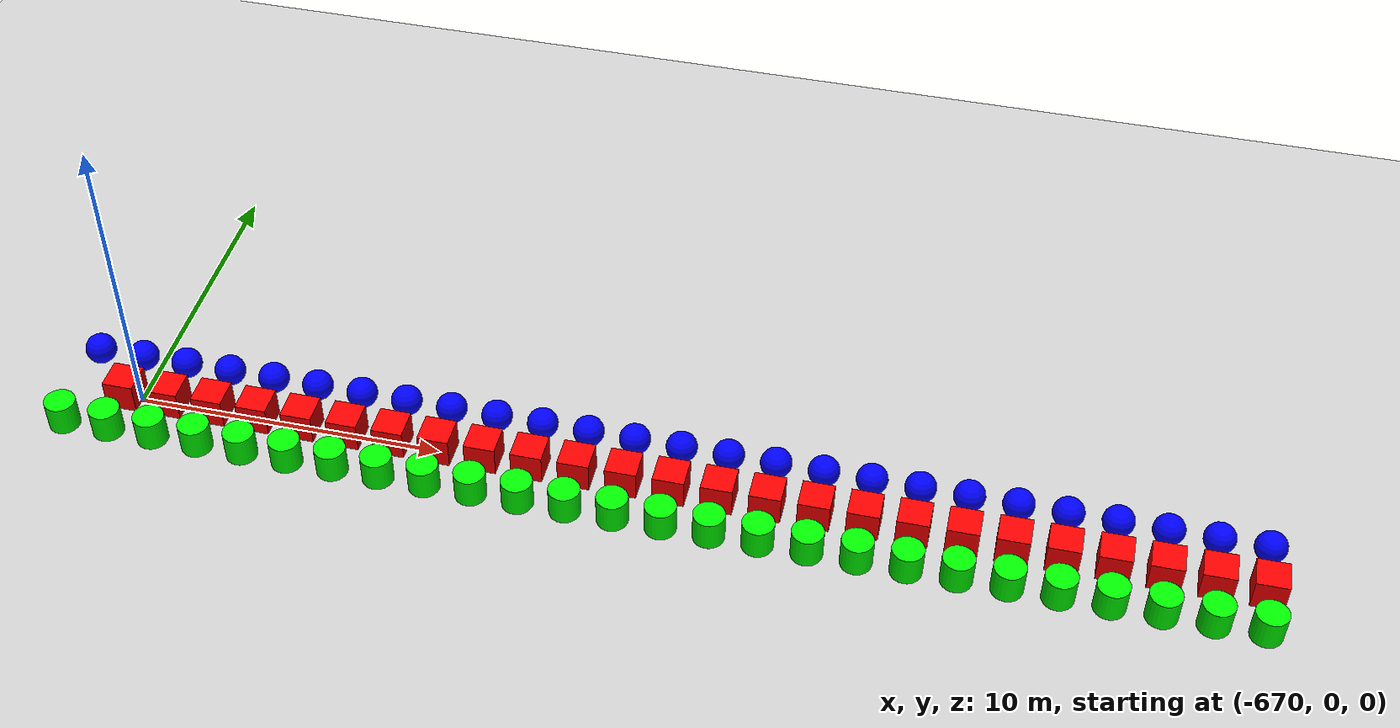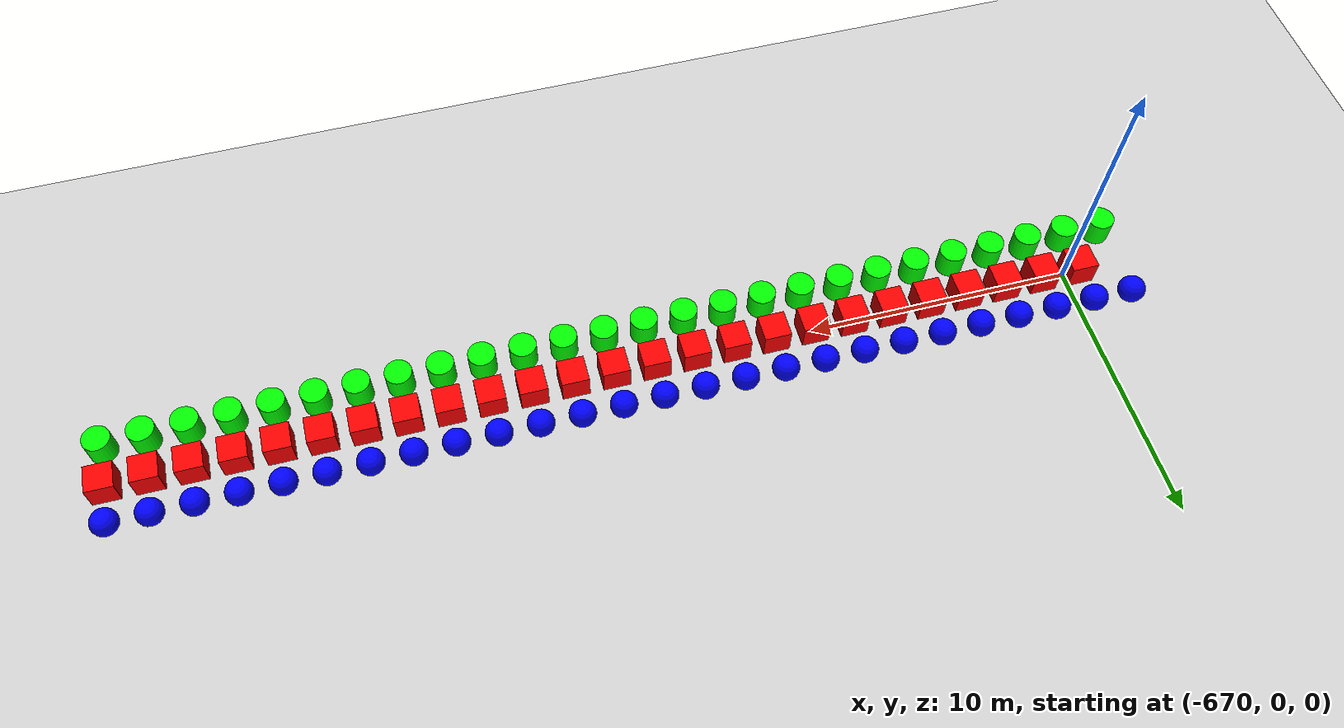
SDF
<sdf version="1.6">
 <world name="shapes">
  <model name="ground_plane">
   <static>true</static>
   <link name="link">
    <collision name="collision">
     <geometry><plane><normal>0 0 1</normal><size>100 100</size></plane></geometry>
    </collision>
    <visual name="visual">
     <geometry><plane><normal>0 0 1</normal><size>100 100</size></plane></geometry>
     <material>
      <ambient>0.8 0.8 0.8 1</ambient>
      <diffuse>0.8 0.8 0.8 1</diffuse>
      <specular>0.8 0.8 0.8 1</specular>
     </material>
    </visual>
   </link>
  </model>
  <model name="cylinder_52">
   <static>false</static>
   <pose>-672.0 -1.5 0.5 0 0 0</pose>
   <link name="cylinder_link">
    <inertial>
     <inertia><ixx>2</ixx><ixy>0</ixy><ixz>0</ixz><iyy>2</iyy><iyz>0</iyz><izz>2</izz></inertia>
     <mass>2.0</mass>
    </inertial>
    <collision name="cylinder_collision">
     <geometry><cylinder><radius>0.5</radius><length>1.0</length></cylinder></geometry>
    </collision>
    <visual name="cylinder_visual">
     <geometry><cylinder><radius>0.5</radius><length>1.0</length></cylinder></geometry>
     <material><ambient>0 1 0 1</ambient><diffuse>0 1 0 1</diffuse><specular>0 1 0 1</specular></material>
    </visual>
   </link>
  </model>
  <model name="sphere_52">
   <static>false</static>
   <pose>-672.0 1.5 0.5 0 0 0</pose>
   <link name="sphere_link">
    <inertial>
     <inertia><ixx>3</ixx><ixy>0</ixy><ixz>0</ixz><iyy>3</iyy><iyz>0</iyz><izz>3</izz></inertia>
     <mass>3.0</mass>
    </inertial>
    <collision name="sphere_collision"><geometry><sphere><radius>0.5</radius></sphere></geometry></collision>
    <visual name="sphere_visual">
     <geometry><sphere><radius>0.5</radius></sphere></geometry>
     <material><ambient>0 0 1 1</ambient><diffuse>0 0 1 1</diffuse><specular>0 0 1 1</specular></material>
    </visual>
   </link>
  </model>
  <model name="box_53">
   <static>false</static>
   <pose>-670.5 0 0.5 0 0 0</pose>
   <link name="box_link">
    <inertial>
     <inertia><ixx>1</ixx><ixy>0</ixy><ixz>0</ixz><iyy>1</iyy><iyz>0</iyz><izz>1</izz></inertia>
     <mass>1.0</mass>
    </inertial>
    <collision name="box_collision"><geometry><box><size>1 1 1</size></box></geometry></collision>
    <visual name="box_visual">
     <geometry><box><size>1 1 1</size></box></geometry>
     <material><ambient>1 0 0 1</ambient><diffuse>1 0 0 1</diffuse><specular>1 0 0 1</specular></material>
    </visual>
   </link>
  </model>
  <model name="cylinder_53">
   <static>false</static>
   <pose>-670.5 -1.5 0.5 0 0 0</pose>
   <link name="cylinder_link">
    <inertial>
     <inertia><ixx>2</ixx><ixy>0</ixy><ixz>0</ixz><iyy>2</iyy><iyz>0</iyz><izz>2</izz></inertia>
     <mass>2.0</mass>
    </inertial>
    <collision name="cylinder_collision">
     <geometry><cylinder><radius>0.5</radius><length>1.0</length></cylinder></geometry>
    </collision>
    <visual name="cylinder_visual">
     <geometry><cylinder><radius>0.5</radius><length>1.0</length></cylinder></geometry>
     <material><ambient>0 1 0 1</ambient><diffuse>0 1 0 1</diffuse><specular>0 1 0 1</specular></material>
    </visual>
   </link>
  </model>
  <model name="sphere_53">
   <static>false</static>
   <pose>-670.5 1.5 0.5 0 0 0</pose>
   <link name="sphere_link">
    <inertial>
     <inertia><ixx>3</ixx><ixy>0</ixy><ixz>0</ixz><iyy>3</iyy><iyz>0</iyz><izz>3</izz></inertia>
     <mass>3.0</mass>
    </inertial>
    <collision name="sphere_collision"><geometry><sphere><radius>0.5</radius></sphere></geometry></collision>
    <visual name="sphere_visual">
     <geometry><sphere><radius>0.5</radius></sphere></geometry>
     <material><ambient>0 0 1 1</ambient><diffuse>0 0 1 1</diffuse><specular>0 0 1 1</specular></material>
    </visual>
   </link>
  </model>
  <model name="box_54">
   <static>false</static>
   <pose>-669.0 0 0.5 0 0 0</pose>
   <link name="box_link">
    <inertial>
     <inertia><ixx>1</ixx><ixy>0</ixy><ixz>0</ixz><iyy>1</iyy><iyz>0</iyz><izz>1</izz></inertia>
     <mass>1.0</mass>
    </inertial>
    <collision name="box_collision"><geometry><box><size>1 1 1</size></box></geometry></collision>
    <visual name="box_visual">
     <geometry><box><size>1 1 1</size></box></geometry>
     <material><ambient>1 0 0 1</ambient><diffuse>1 0 0 1</diffuse><specular>1 0 0 1</specular></material>
    </visual>
   </link>
  </model>
  <model name="cylinder_54">
   <static>false</static>
   <pose>-669.0 -1.5 0.5 0 0 0</pose>
   <link name="cylinder_link">
    <inertial>
     <inertia><ixx>2</ixx><ixy>0</ixy><ixz>0</ixz><iyy>2</iyy><iyz>0</iyz><izz>2</izz></inertia>
     <mass>2.0</mass>
    </inertial>
    <collision name="cylinder_collision">
     <geometry><cylinder><radius>0.5</radius><length>1.0</length></cylinder></geometry>
    </collision>
    <visual name="cylinder_visual">
     <geometry><cylinder><radius>0.5</radius><length>1.0</length></cylinder></geometry>
     <material><ambient>0 1 0 1</ambient><diffuse>0 1 0 1</diffuse><specular>0 1 0 1</specular></material>
    </visual>
   </link>
  </model>
  <model name="sphere_54">
   <static>false</static>
   <pose>-669.0 1.5 0.5 0 0 0</pose>
   <link name="sphere_link">
    <inertial>
     <inertia><ixx>3</ixx><ixy>0</ixy><ixz>0</ixz><iyy>3</iyy><iyz>0</iyz><izz>3</izz></inertia>
     <mass>3.0</mass>
    </inertial>
    <collision name="sphere_collision"><geometry><sphere><radius>0.5</radius></sphere></geometry></collision>
    <visual name="sphere_visual">
     <geometry><sphere><radius>0.5</radius></sphere></geometry>
     <material><ambient>0 0 1 1</ambient><diffuse>0 0 1 1</diffuse><specular>0 0 1 1</specular></material>
    </visual>
   </link>
  </model>
  <model name="box_55">
   <static>false</static>
   <pose>-667.5 0 0.5 0 0 0</pose>
   <link name="box_link">
    <inertial>
     <inertia><ixx>1</ixx><ixy>0</ixy><ixz>0</ixz><iyy>1</iyy><iyz>0</iyz><izz>1</izz></inertia>
     <mass>1.0</mass>
    </inertial>
    <collision name="box_collision"><geometry><box><size>1 1 1</size></box></geometry></collision>
    <visual name="box_visual">
     <geometry><box><size>1 1 1</size></box></geometry>
     <material><ambient>1 0 0 1</ambient><diffuse>1 0 0 1</diffuse><specular>1 0 0 1</specular></material>
    </visual>
   </link>
  </model>
  <model name="cylinder_55">
   <static>false</static>
   <pose>-667.5 -1.5 0.5 0 0 0</pose>
   <link name="cylinder_link">
    <inertial>
     <inertia><ixx>2</ixx><ixy>0</ixy><ixz>0</ixz><iyy>2</iyy><iyz>0</iyz><izz>2</izz></inertia>
     <mass>2.0</mass>
    </inertial>
    <collision name="cylinder_collision">
     <geometry><cylinder><radius>0.5</radius><length>1.0</length></cylinder></geometry>
    </collision>
    <visual name="cylinder_visual">
     <geometry><cylinder><radius>0.5</radius><length>1.0</length></cylinder></geometry>
     <material><ambient>0 1 0 1</ambient><diffuse>0 1 0 1</diffuse><specular>0 1 0 1</specular></material>
    </visual>
   </link>
  </model>
  <model name="sphere_55">
   <static>false</static>
   <pose>-667.5 1.5 0.5 0 0 0</pose>
   <link name="sphere_link">
    <inertial>
     <inertia><ixx>3</ixx><ixy>0</ixy><ixz>0</ixz><iyy>3</iyy><iyz>0</iyz><izz>3</izz></inertia>
     <mass>3.0</mass>
    </inertial>
    <collision name="sphere_collision"><geometry><sphere><radius>0.5</radius></sphere></geometry></collision>
    <visual name="sphere_visual">
     <geometry><sphere><radius>0.5</radius></sphere></geometry>
     <material><ambient>0 0 1 1</ambient><diffuse>0 0 1 1</diffuse><specular>0 0 1 1</specular></material>
    </visual>
   </link>
  </model>
  <model name="box_56">
   <static>false</static>
   <pose>-666.0 0 0.5 0 0 0</pose>
   <link name="box_link">
    <inertial>
     <inertia><ixx>1</ixx><ixy>0</ixy><ixz>0</ixz><iyy>1</iyy><iyz>0</iyz><izz>1</izz></inertia>
     <mass>1.0</mass>
    </inertial>
    <collision name="box_collision"><geometry><box><size>1 1 1</size></box></geometry></collision>
    <visual name="box_visual">
     <geometry><box><size>1 1 1</size></box></geometry>
     <material><ambient>1 0 0 1</ambient><diffuse>1 0 0 1</diffuse><specular>1 0 0 1</specular></material>
    </visual>
   </link>
  </model>
  <model name="cylinder_56">
   <static>false</static>
   <pose>-666.0 -1.5 0.5 0 0 0</pose>
   <link name="cylinder_link">
    <inertial>
     <inertia><ixx>2</ixx><ixy>0</ixy><ixz>0</ixz><iyy>2</iyy><iyz>0</iyz><izz>2</izz></inertia>
     <mass>2.0</mass>
    </inertial>
    <collision name="cylinder_collision">
     <geometry><cylinder><radius>0.5</radius><length>1.0</length></cylinder></geometry>
    </collision>
    <visual name="cylinder_visual">
     <geometry><cylinder><radius>0.5</radius><length>1.0</length></cylinder></geometry>
     <material><ambient>0 1 0 1</ambient><diffuse>0 1 0 1</diffuse><specular>0 1 0 1</specular></material>
    </visual>
   </link>
  </model>
  <model name="sphere_56">
   <static>false</static>
   <pose>-666.0 1.5 0.5 0 0 0</pose>
   <link name="sphere_link">
    <inertial>
     <inertia><ixx>3</ixx><ixy>0</ixy><ixz>0</ixz><iyy>3</iyy><iyz>0</iyz><izz>3</izz></inertia>
     <mass>3.0</mass>
    </inertial>
    <collision name="sphere_collision"><geometry><sphere><radius>0.5</radius></sphere></geometry></collision>
    <visual name="sphere_visual">
     <geometry><sphere><radius>0.5</radius></sphere></geometry>
     <material><ambient>0 0 1 1</ambient><diffuse>0 0 1 1</diffuse><specular>0 0 1 1</specular></material>
    </visual>
   </link>
  </model>
  <model name="box_57">
   <static>false</static>
   <pose>-664.5 0 0.5 0 0 0</pose>
   <link name="box_link">
    <inertial>
     <inertia><ixx>1</ixx><ixy>0</ixy><ixz>0</ixz><iyy>1</iyy><iyz>0</iyz><izz>1</izz></inertia>
     <mass>1.0</mass>
    </inertial>
    <collision name="box_collision"><geometry><box><size>1 1 1</size></box></geometry></collision>
    <visual name="box_visual">
     <geometry><box><size>1 1 1</size></box></geometry>
     <material><ambient>1 0 0 1</ambient><diffuse>1 0 0 1</diffuse><specular>1 0 0 1</specular></material>
    </visual>
   </link>
  </model>
  <model name="cylinder_57">
   <static>false</static>
   <pose>-664.5 -1.5 0.5 0 0 0</pose>
   <link name="cylinder_link">
    <inertial>
     <inertia><ixx>2</ixx><ixy>0</ixy><ixz>0</ixz><iyy>2</iyy><iyz>0</iyz><izz>2</izz></inertia>
     <mass>2.0</mass>
    </inertial>
    <collision name="cylinder_collision">
     <geometry><cylinder><radius>0.5</radius><length>1.0</length></cylinder></geometry>
    </collision>
    <visual name="cylinder_visual">
     <geometry><cylinder><radius>0.5</radius><length>1.0</length></cylinder></geometry>
     <material><ambient>0 1 0 1</ambient><diffuse>0 1 0 1</diffuse><specular>0 1 0 1</specular></material>
    </visual>
   </link>
  </model>
  <model name="sphere_57">
   <static>false</static>
   <pose>-664.5 1.5 0.5 0 0 0</pose>
   <link name="sphere_link">
    <inertial>
     <inertia><ixx>3</ixx><ixy>0</ixy><ixz>0</ixz><iyy>3</iyy><iyz>0</iyz><izz>3</izz></inertia>
     <mass>3.0</mass>
    </inertial>
    <collision name="sphere_collision"><geometry><sphere><radius>0.5</radius></sphere></geometry></collision>
    <visual name="sphere_visual">
     <geometry><sphere><radius>0.5</radius></sphere></geometry>
     <material><ambient>0 0 1 1</ambient><diffuse>0 0 1 1</diffuse><specular>0 0 1 1</specular></material>
    </visual>
   </link>
  </model>
  <model name="box_58">
   <static>false</static>
   <pose>-663.0 0 0.5 0 0 0</pose>
   <link name="box_link">
    <inertial>
     <inertia><ixx>1</ixx><ixy>0</ixy><ixz>0</ixz><iyy>1</iyy><iyz>0</iyz><izz>1</izz></inertia>
     <mass>1.0</mass>
    </inertial>
    <collision name="box_collision"><geometry><box><size>1 1 1</size></box></geometry></collision>
    <visual name="box_visual">
     <geometry><box><size>1 1 1</size></box></geometry>
     <material><ambient>1 0 0 1</ambient><diffuse>1 0 0 1</diffuse><specular>1 0 0 1</specular></material>
    </visual>
   </link>
  </model>
  <model name="cylinder_58">
   <static>false</static>
   <pose>-663.0 -1.5 0.5 0 0 0</pose>
   <link name="cylinder_link">
    <inertial>
     <inertia><ixx>2</ixx><ixy>0</ixy><ixz>0</ixz><iyy>2</iyy><iyz>0</iyz><izz>2</izz></inertia>
     <mass>2.0</mass>
    </inertial>
    <collision name="cylinder_collision">
     <geometry><cylinder><radius>0.5</radius><length>1.0</length></cylinder></geometry>
    </collision>
    <visual name="cylinder_visual">
     <geometry><cylinder><radius>0.5</radius><length>1.0</length></cylinder></geometry>
     <material><ambient>0 1 0 1</ambient><diffuse>0 1 0 1</diffuse><specular>0 1 0 1</specular></material>
    </visual>
   </link>
  </model>
  <model name="sphere_58">
   <static>false</static>
   <pose>-663.0 1.5 0.5 0 0 0</pose>
   <link name="sphere_link">
    <inertial>
     <inertia><ixx>3</ixx><ixy>0</ixy><ixz>0</ixz><iyy>3</iyy><iyz>0</iyz><izz>3</izz></inertia>
     <mass>3.0</mass>
    </inertial>
    <collision name="sphere_collision"><geometry><sphere><radius>0.5</radius></sphere></geometry></collision>
    <visual name="sphere_visual">
     <geometry><sphere><radius>0.5</radius></sphere></geometry>
     <material><ambient>0 0 1 1</ambient><diffuse>0 0 1 1</diffuse><specular>0 0 1 1</specular></material>
    </visual>
   </link>
  </model>
  <model name="box_59">
   <static>false</static>
   <pose>-661.5 0 0.5 0 0 0</pose>
   <link name="box_link">
    <inertial>
     <inertia><ixx>1</ixx><ixy>0</ixy><ixz>0</ixz><iyy>1</iyy><iyz>0</iyz><izz>1</izz></inertia>
     <mass>1.0</mass>
    </inertial>
    <collision name="box_collision"><geometry><box><size>1 1 1</size></box></geometry></collision>
    <visual name="box_visual">
     <geometry><box><size>1 1 1</size></box></geometry>
     <material><ambient>1 0 0 1</ambient><diffuse>1 0 0 1</diffuse><specular>1 0 0 1</specular></material>
    </visual>
   </link>
  </model>
  <model name="cylinder_59">
   <static>false</static>
   <pose>-661.5 -1.5 0.5 0 0 0</pose>
   <link name="cylinder_link">
    <inertial>
     <inertia><ixx>2</ixx><ixy>0</ixy><ixz>0</ixz><iyy>2</iyy><iyz>0</iyz><izz>2</izz></inertia>
     <mass>2.0</mass>
    </inertial>
    <collision name="cylinder_collision">
     <geometry><cylinder><radius>0.5</radius><length>1.0</length></cylinder></geometry>
    </collision>
    <visual name="cylinder_visual">
     <geometry><cylinder><radius>0.5</radius><length>1.0</length></cylinder></geometry>
     <material><ambient>0 1 0 1</ambient><diffuse>0 1 0 1</diffuse><specular>0 1 0 1</specular></material>
    </visual>
   </link>
  </model>
  <model name="sphere_59">
   <static>false</static>
   <pose>-661.5 1.5 0.5 0 0 0</pose>
   <link name="sphere_link">
    <inertial>
     <inertia><ixx>3</ixx><ixy>0</ixy><ixz>0</ixz><iyy>3</iyy><iyz>0</iyz><izz>3</izz></inertia>
     <mass>3.0</mass>
    </inertial>
    <collision name="sphere_collision"><geometry><sphere><radius>0.5</radius></sphere></geometry></collision>
    <visual name="sphere_visual">
     <geometry><sphere><radius>0.5</radius></sphere></geometry>
     <material><ambient>0 0 1 1</ambient><diffuse>0 0 1 1</diffuse><specular>0 0 1 1</specular></material>
    </visual>
   </link>
  </model>
  <model name="box_60">
   <static>false</static>
   <pose>-660.0 0 0.5 0 0 0</pose>
   <link name="box_link">
    <inertial>
     <inertia><ixx>1</ixx><ixy>0</ixy><ixz>0</ixz><iyy>1</iyy><iyz>0</iyz><izz>1</izz></inertia>
     <mass>1.0</mass>
    </inertial>
    <collision name="box_collision"><geometry><box><size>1 1 1</size></box></geometry></collision>
    <visual name="box_visual">
     <geometry><box><size>1 1 1</size></box></geometry>
     <material><ambient>1 0 0 1</ambient><diffuse>1 0 0 1</diffuse><specular>1 0 0 1</specular></material>
    </visual>
   </link>
  </model>
  <model name="cylinder_60">
   <static>false</static>
   <pose>-660.0 -1.5 0.5 0 0 0</pose>
   <link name="cylinder_link">
    <inertial>
     <inertia><ixx>2</ixx><ixy>0</ixy><ixz>0</ixz><iyy>2</iyy><iyz>0</iyz><izz>2</izz></inertia>
     <mass>2.0</mass>
    </inertial>
    <collision name="cylinder_collision">
     <geometry><cylinder><radius>0.5</radius><length>1.0</length></cylinder></geometry>
    </collision>
    <visual name="cylinder_visual">
     <geometry><cylinder><radius>0.5</radius><length>1.0</length></cylinder></geometry>
     <material><ambient>0 1 0 1</ambient><diffuse>0 1 0 1</diffuse><specular>0 1 0 1</specular></material>
    </visual>
   </link>
  </model>
  <model name="sphere_60">
   <static>false</static>
   <pose>-660.0 1.5 0.5 0 0 0</pose>
   <link name="sphere_link">
    <inertial>
     <inertia><ixx>3</ixx><ixy>0</ixy><ixz>0</ixz><iyy>3</iyy><iyz>0</iyz><izz>3</izz></inertia>
     <mass>3.0</mass>
    </inertial>
    <collision name="sphere_collision"><geometry><sphere><radius>0.5</radius></sphere></geometry></collision>
    <visual name="sphere_visual">
     <geometry><sphere><radius>0.5</radius></sphere></geometry>
     <material><ambient>0 0 1 1</ambient><diffuse>0 0 1 1</diffuse><specular>0 0 1 1</specular></material>
    </visual>
   </link>
  </model>
  <model name="box_61">
   <static>false</static>
   <pose>-658.5 0 0.5 0 0 0</pose>
   <link name="box_link">
    <inertial>
     <inertia><ixx>1</ixx><ixy>0</ixy><ixz>0</ixz><iyy>1</iyy><iyz>0</iyz><izz>1</izz></inertia>
     <mass>1.0</mass>
    </inertial>
    <collision name="box_collision"><geometry><box><size>1 1 1</size></box></geometry></collision>
    <visual name="box_visual">
     <geometry><box><size>1 1 1</size></box></geometry>
     <material><ambient>1 0 0 1</ambient><diffuse>1 0 0 1</diffuse><specular>1 0 0 1</specular></material>
    </visual>
   </link>
  </model>
  <model name="cylinder_61">
   <static>false</static>
   <pose>-658.5 -1.5 0.5 0 0 0</pose>
   <link name="cylinder_link">
    <inertial>
     <inertia><ixx>2</ixx><ixy>0</ixy><ixz>0</ixz><iyy>2</iyy><iyz>0</iyz><izz>2</izz></inertia>
     <mass>2.0</mass>
    </inertial>
    <collision name="cylinder_collision">
     <geometry><cylinder><radius>0.5</radius><length>1.0</length></cylinder></geometry>
    </collision>
    <visual name="cylinder_visual">
     <geometry><cylinder><radius>0.5</radius><length>1.0</length></cylinder></geometry>
     <material><ambient>0 1 0 1</ambient><diffuse>0 1 0 1</diffuse><specular>0 1 0 1</specular></material>
    </visual>
   </link>
  </model>
  <model name="sphere_61">
   <static>false</static>
   <pose>-658.5 1.5 0.5 0 0 0</pose>
   <link name="sphere_link">
    <inertial>
     <inertia><ixx>3</ixx><ixy>0</ixy><ixz>0</ixz><iyy>3</iyy><iyz>0</iyz><izz>3</izz></inertia>
     <mass>3.0</mass>
    </inertial>
    <collision name="sphere_collision"><geometry><sphere><radius>0.5</radius></sphere></geometry></collision>
    <visual name="sphere_visual">
     <geometry><sphere><radius>0.5</radius></sphere></geometry>
     <material><ambient>0 0 1 1</ambient><diffuse>0 0 1 1</diffuse><specular>0 0 1 1</specular></material>
    </visual>
   </link>
  </model>
  <model name="box_62">
   <static>false</static>
   <pose>-657.0 0 0.5 0 0 0</pose>
   <link name="box_link">
    <inertial>
     <inertia><ixx>1</ixx><ixy>0</ixy><ixz>0</ixz><iyy>1</iyy><iyz>0</iyz><izz>1</izz></inertia>
     <mass>1.0</mass>
    </inertial>
    <collision name="box_collision"><geometry><box><size>1 1 1</size></box></geometry></collision>
    <visual name="box_visual">
     <geometry><box><size>1 1 1</size></box></geometry>
     <material><ambient>1 0 0 1</ambient><diffuse>1 0 0 1</diffuse><specular>1 0 0 1</specular></material>
    </visual>
   </link>
  </model>
  <model name="cylinder_62">
   <static>false</static>
   <pose>-657.0 -1.5 0.5 0 0 0</pose>
   <link name="cylinder_link">
    <inertial>
     <inertia><ixx>2</ixx><ixy>0</ixy><ixz>0</ixz><iyy>2</iyy><iyz>0</iyz><izz>2</izz></inertia>
     <mass>2.0</mass>
    </inertial>
    <collision name="cylinder_collision">
     <geometry><cylinder><radius>0.5</radius><length>1.0</length></cylinder></geometry>
    </collision>
    <visual name="cylinder_visual">
     <geometry><cylinder><radius>0.5</radius><length>1.0</length></cylinder></geometry>
     <material><ambient>0 1 0 1</ambient><diffuse>0 1 0 1</diffuse><specular>0 1 0 1</specular></material>
    </visual>
   </link>
  </model>
  <model name="sphere_62">
   <static>false</static>
   <pose>-657.0 1.5 0.5 0 0 0</pose>
   <link name="sphere_link">
    <inertial>
     <inertia><ixx>3</ixx><ixy>0</ixy><ixz>0</ixz><iyy>3</iyy><iyz>0</iyz><izz>3</izz></inertia>
     <mass>3.0</mass>
    </inertial>
    <collision name="sphere_collision"><geometry><sphere><radius>0.5</radius></sphere></geometry></collision>
    <visual name="sphere_visual">
     <geometry><sphere><radius>0.5</radius></sphere></geometry>
     <material><ambient>0 0 1 1</ambient><diffuse>0 0 1 1</diffuse><specular>0 0 1 1</specular></material>
    </visual>
   </link>
  </model>
  <model name="box_63">
   <static>false</static>
   <pose>-655.5 0 0.5 0 0 0</pose>
   <link name="box_link">
    <inertial>
     <inertia><ixx>1</ixx><ixy>0</ixy><ixz>0</ixz><iyy>1</iyy><iyz>0</iyz><izz>1</izz></inertia>
     <mass>1.0</mass>
    </inertial>
    <collision name="box_collision"><geometry><box><size>1 1 1</size></box></geometry></collision>
    <visual name="box_visual">
     <geometry><box><size>1 1 1</size></box></geometry>
     <material><ambient>1 0 0 1</ambient><diffuse>1 0 0 1</diffuse><specular>1 0 0 1</specular></material>
    </visual>
   </link>
  </model>
  <model name="cylinder_63">
   <static>false</static>
   <pose>-655.5 -1.5 0.5 0 0 0</pose>
   <link name="cylinder_link">
    <inertial>
     <inertia><ixx>2</ixx><ixy>0</ixy><ixz>0</ixz><iyy>2</iyy><iyz>0</iyz><izz>2</izz></inertia>
     <mass>2.0</mass>
    </inertial>
    <collision name="cylinder_collision">
     <geometry><cylinder><radius>0.5</radius><length>1.0</length></cylinder></geometry>
    </collision>
    <visual name="cylinder_visual">
     <geometry><cylinder><radius>0.5</radius><length>1.0</length></cylinder></geometry>
     <material><ambient>0 1 0 1</ambient><diffuse>0 1 0 1</diffuse><specular>0 1 0 1</specular></material>
    </visual>
   </link>
  </model>
  <model name="sphere_63">
   <static>false</static>
   <pose>-655.5 1.5 0.5 0 0 0</pose>
   <link name="sphere_link">
    <inertial>
     <inertia><ixx>3</ixx><ixy>0</ixy><ixz>0</ixz><iyy>3</iyy><iyz>0</iyz><izz>3</izz></inertia>
     <mass>3.0</mass>
    </inertial>
    <collision name="sphere_collision"><geometry><sphere><radius>0.5</radius></sphere></geometry></collision>
    <visual name="sphere_visual">
     <geometry><sphere><radius>0.5</radius></sphere></geometry>
     <material><ambient>0 0 1 1</ambient><diffuse>0 0 1 1</diffuse><specular>0 0 1 1</specular></material>
    </visual>
   </link>
  </model>
  <model name="box_64">
   <static>false</static>
   <pose>-654.0 0 0.5 0 0 0</pose>
   <link name="box_link">
    <inertial>
     <inertia><ixx>1</ixx><ixy>0</ixy><ixz>0</ixz><iyy>1</iyy><iyz>0</iyz><izz>1</izz></inertia>
     <mass>1.0</mass>
    </inertial>
    <collision name="box_collision"><geometry><box><size>1 1 1</size></box></geometry></collision>
    <visual name="box_visual">
     <geometry><box><size>1 1 1</size></box></geometry>
     <material><ambient>1 0 0 1</ambient><diffuse>1 0 0 1</diffuse><specular>1 0 0 1</specular></material>
    </visual>
   </link>
  </model>
  <model name="cylinder_64">
   <static>false</static>
   <pose>-654.0 -1.5 0.5 0 0 0</pose>
   <link name="cylinder_link">
    <inertial>
     <inertia><ixx>2</ixx><ixy>0</ixy><ixz>0</ixz><iyy>2</iyy><iyz>0</iyz><izz>2</izz></inertia>
     <mass>2.0</mass>
    </inertial>
    <collision name="cylinder_collision">
     <geometry><cylinder><radius>0.5</radius><length>1.0</length></cylinder></geometry>
    </collision>
    <visual name="cylinder_visual">
     <geometry><cylinder><radius>0.5</radius><length>1.0</length></cylinder></geometry>
     <material><ambient>0 1 0 1</ambient><diffuse>0 1 0 1</diffuse><specular>0 1 0 1</specular></material>
    </visual>
   </link>
  </model>
  <model name="sphere_64">
   <static>false</static>
   <pose>-654.0 1.5 0.5 0 0 0</pose>
   <link name="sphere_link">
    <inertial>
     <inertia><ixx>3</ixx><ixy>0</ixy><ixz>0</ixz><iyy>3</iyy><iyz>0</iyz><izz>3</izz></inertia>
     <mass>3.0</mass>
    </inertial>
    <collision name="sphere_collision"><geometry><sphere><radius>0.5</radius></sphere></geometry></collision>
    <visual name="sphere_visual">
     <geometry><sphere><radius>0.5</radius></sphere></geometry>
     <material><ambient>0 0 1 1</ambient><diffuse>0 0 1 1</diffuse><specular>0 0 1 1</specular></material>
    </visual>
   </link>
  </model>
  <model name="box_65">
   <static>false</static>
   <pose>-652.5 0 0.5 0 0 0</pose>
   <link name="box_link">
    <inertial>
     <inertia><ixx>1</ixx><ixy>0</ixy><ixz>0</ixz><iyy>1</iyy><iyz>0</iyz><izz>1</izz></inertia>
     <mass>1.0</mass>
    </inertial>
    <collision name="box_collision"><geometry><box><size>1 1 1</size></box></geometry></collision>
    <visual name="box_visual">
     <geometry><box><size>1 1 1</size></box></geometry>
     <material><ambient>1 0 0 1</ambient><diffuse>1 0 0 1</diffuse><specular>1 0 0 1</specular></material>
    </visual>
   </link>
  </model>
  <model name="cylinder_65">
   <static>false</static>
   <pose>-652.5 -1.5 0.5 0 0 0</pose>
   <link name="cylinder_link">
    <inertial>
     <inertia><ixx>2</ixx><ixy>0</ixy><ixz>0</ixz><iyy>2</iyy><iyz>0</iyz><izz>2</izz></inertia>
     <mass>2.0</mass>
    </inertial>
    <collision name="cylinder_collision">
     <geometry><cylinder><radius>0.5</radius><length>1.0</length></cylinder></geometry>
    </collision>
    <visual name="cylinder_visual">
     <geometry><cylinder><radius>0.5</radius><length>1.0</length></cylinder></geometry>
     <material><ambient>0 1 0 1</ambient><diffuse>0 1 0 1</diffuse><specular>0 1 0 1</specular></material>
    </visual>
   </link>
  </model>
  <model name="sphere_65">
   <static>false</static>
   <pose>-652.5 1.5 0.5 0 0 0</pose>
   <link name="sphere_link">
    <inertial>
     <inertia><ixx>3</ixx><ixy>0</ixy><ixz>0</ixz><iyy>3</iyy><iyz>0</iyz><izz>3</izz></inertia>
     <mass>3.0</mass>
    </inertial>
    <collision name="sphere_collision"><geometry><sphere><radius>0.5</radius></sphere></geometry></collision>
    <visual name="sphere_visual">
     <geometry><sphere><radius>0.5</radius></sphere></geometry>
     <material><ambient>0 0 1 1</ambient><diffuse>0 0 1 1</diffuse><specular>0 0 1 1</specular></material>
    </visual>
   </link>
  </model>
  <model name="box_66">
   <static>false</static>
   <pose>-651.0 0 0.5 0 0 0</pose>
   <link name="box_link">
    <inertial>
     <inertia><ixx>1</ixx><ixy>0</ixy><ixz>0</ixz><iyy>1</iyy><iyz>0</iyz><izz>1</izz></inertia>
     <mass>1.0</mass>
    </inertial>
    <collision name="box_collision"><geometry><box><size>1 1 1</size></box></geometry></collision>
    <visual name="box_visual">
     <geometry><box><size>1 1 1</size></box></geometry>
     <material><ambient>1 0 0 1</ambient><diffuse>1 0 0 1</diffuse><specular>1 0 0 1</specular></material>
    </visual>
   </link>
  </model>
  <model name="cylinder_66">
   <static>false</static>
   <pose>-651.0 -1.5 0.5 0 0 0</pose>
   <link name="cylinder_link">
    <inertial>
     <inertia><ixx>2</ixx><ixy>0</ixy><ixz>0</ixz><iyy>2</iyy><iyz>0</iyz><izz>2</izz></inertia>
     <mass>2.0</mass>
    </inertial>
    <collision name="cylinder_collision">
     <geometry><cylinder><radius>0.5</radius><length>1.0</length></cylinder></geometry>
    </collision>
    <visual name="cylinder_visual">
     <geometry><cylinder><radius>0.5</radius><length>1.0</length></cylinder></geometry>
     <material><ambient>0 1 0 1</ambient><diffuse>0 1 0 1</diffuse><specular>0 1 0 1</specular></material>
    </visual>
   </link>
  </model>
  <model name="sphere_66">
   <static>false</static>
   <pose>-651.0 1.5 0.5 0 0 0</pose>
   <link name="sphere_link">
    <inertial>
     <inertia><ixx>3</ixx><ixy>0</ixy><ixz>0</ixz><iyy>3</iyy><iyz>0</iyz><izz>3</izz></inertia>
     <mass>3.0</mass>
    </inertial>
    <collision name="sphere_collision"><geometry><sphere><radius>0.5</radius></sphere></geometry></collision>
    <visual name="sphere_visual">
     <geometry><sphere><radius>0.5</radius></sphere></geometry>
     <material><ambient>0 0 1 1</ambient><diffuse>0 0 1 1</diffuse><specular>0 0 1 1</specular></material>
    </visual>
   </link>
  </model>
  <model name="box_67">
   <static>false</static>
   <pose>-649.5 0 0.5 0 0 0</pose>
   <link name="box_link">
    <inertial>
     <inertia><ixx>1</ixx><ixy>0</ixy><ixz>0</ixz><iyy>1</iyy><iyz>0</iyz><izz>1</izz></inertia>
     <mass>1.0</mass>
    </inertial>
    <collision name="box_collision"><geometry><box><size>1 1 1</size></box></geometry></collision>
    <visual name="box_visual">
     <geometry><box><size>1 1 1</size></box></geometry>
     <material><ambient>1 0 0 1</ambient><diffuse>1 0 0 1</diffuse><specular>1 0 0 1</specular></material>
    </visual>
   </link>
  </model>
  <model name="cylinder_67">
   <static>false</static>
   <pose>-649.5 -1.5 0.5 0 0 0</pose>
   <link name="cylinder_link">
    <inertial>
     <inertia><ixx>2</ixx><ixy>0</ixy><ixz>0</ixz><iyy>2</iyy><iyz>0</iyz><izz>2</izz></inertia>
     <mass>2.0</mass>
    </inertial>
    <collision name="cylinder_collision">
     <geometry><cylinder><radius>0.5</radius><length>1.0</length></cylinder></geometry>
    </collision>
    <visual name="cylinder_visual">
     <geometry><cylinder><radius>0.5</radius><length>1.0</length></cylinder></geometry>
     <material><ambient>0 1 0 1</ambient><diffuse>0 1 0 1</diffuse><specular>0 1 0 1</specular></material>
    </visual>
   </link>
  </model>
  <model name="sphere_67">
   <static>false</static>
   <pose>-649.5 1.5 0.5 0 0 0</pose>
   <link name="sphere_link">
    <inertial>
     <inertia><ixx>3</ixx><ixy>0</ixy><ixz>0</ixz><iyy>3</iyy><iyz>0</iyz><izz>3</izz></inertia>
     <mass>3.0</mass>
    </inertial>
    <collision name="sphere_collision"><geometry><sphere><radius>0.5</radius></sphere></geometry></collision>
    <visual name="sphere_visual">
     <geometry><sphere><radius>0.5</radius></sphere></geometry>
     <material><ambient>0 0 1 1</ambient><diffuse>0 0 1 1</diffuse><specular>0 0 1 1</specular></material>
    </visual>
   </link>
  </model>
  <model name="box_68">
   <static>false</static>
   <pose>-648.0 0 0.5 0 0 0</pose>
   <link name="box_link">
    <inertial>
     <inertia><ixx>1</ixx><ixy>0</ixy><ixz>0</ixz><iyy>1</iyy><iyz>0</iyz><izz>1</izz></inertia>
     <mass>1.0</mass>
    </inertial>
    <collision name="box_collision"><geometry><box><size>1 1 1</size></box></geometry></collision>
    <visual name="box_visual">
     <geometry><box><size>1 1 1</size></box></geometry>
     <material><ambient>1 0 0 1</ambient><diffuse>1 0 0 1</diffuse><specular>1 0 0 1</specular></material>
    </visual>
   </link>
  </model>
  <model name="cylinder_68">
   <static>false</static>
   <pose>-648.0 -1.5 0.5 0 0 0</pose>
   <link name="cylinder_link">
    <inertial>
     <inertia><ixx>2</ixx><ixy>0</ixy><ixz>0</ixz><iyy>2</iyy><iyz>0</iyz><izz>2</izz></inertia>
     <mass>2.0</mass>
    </inertial>
    <collision name="cylinder_collision">
     <geometry><cylinder><radius>0.5</radius><length>1.0</length></cylinder></geometry>
    </collision>
    <visual name="cylinder_visual">
     <geometry><cylinder><radius>0.5</radius><length>1.0</length></cylinder></geometry>
     <material><ambient>0 1 0 1</ambient><diffuse>0 1 0 1</diffuse><specular>0 1 0 1</specular></material>
    </visual>
   </link>
  </model>
  <model name="sphere_68">
   <static>false</static>
   <pose>-648.0 1.5 0.5 0 0 0</pose>
   <link name="sphere_link">
    <inertial>
     <inertia><ixx>3</ixx><ixy>0</ixy><ixz>0</ixz><iyy>3</iyy><iyz>0</iyz><izz>3</izz></inertia>
     <mass>3.0</mass>
    </inertial>
    <collision name="sphere_collision"><geometry><sphere><radius>0.5</radius></sphere></geometry></collision>
    <visual name="sphere_visual">
     <geometry><sphere><radius>0.5</radius></sphere></geometry>
     <material><ambient>0 0 1 1</ambient><diffuse>0 0 1 1</diffuse><specular>0 0 1 1</specular></material>
    </visual>
   </link>
  </model>
  <model name="box_69">
   <static>false</static>
   <pose>-646.5 0 0.5 0 0 0</pose>
   <link name="box_link">
    <inertial>
     <inertia><ixx>1</ixx><ixy>0</ixy><ixz>0</ixz><iyy>1</iyy><iyz>0</iyz><izz>1</izz></inertia>
     <mass>1.0</mass>
    </inertial>
    <collision name="box_collision"><geometry><box><size>1 1 1</size></box></geometry></collision>
    <visual name="box_visual">
     <geometry><box><size>1 1 1</size></box></geometry>
     <material><ambient>1 0 0 1</ambient><diffuse>1 0 0 1</diffuse><specular>1 0 0 1</specular></material>
    </visual>
   </link>
  </model>
  <model name="cylinder_69">
   <static>false</static>
   <pose>-646.5 -1.5 0.5 0 0 0</pose>
   <link name="cylinder_link">
    <inertial>
     <inertia><ixx>2</ixx><ixy>0</ixy><ixz>0</ixz><iyy>2</iyy><iyz>0</iyz><izz>2</izz></inertia>
     <mass>2.0</mass>
    </inertial>
    <collision name="cylinder_collision">
     <geometry><cylinder><radius>0.5</radius><length>1.0</length></cylinder></geometry>
    </collision>
    <visual name="cylinder_visual">
     <geometry><cylinder><radius>0.5</radius><length>1.0</length></cylinder></geometry>
     <material><ambient>0 1 0 1</ambient><diffuse>0 1 0 1</diffuse><specular>0 1 0 1</specular></material>
    </visual>
   </link>
  </model>
  <model name="sphere_69">
   <static>false</static>
   <pose>-646.5 1.5 0.5 0 0 0</pose>
   <link name="sphere_link">
    <inertial>
     <inertia><ixx>3</ixx><ixy>0</ixy><ixz>0</ixz><iyy>3</iyy><iyz>0</iyz><izz>3</izz></inertia>
     <mass>3.0</mass>
    </inertial>
    <collision name="sphere_collision"><geometry><sphere><radius>0.5</radius></sphere></geometry></collision>
    <visual name="sphere_visual">
     <geometry><sphere><radius>0.5</radius></sphere></geometry>
     <material><ambient>0 0 1 1</ambient><diffuse>0 0 1 1</diffuse><specular>0 0 1 1</specular></material>
    </visual>
   </link>
  </model>
  <model name="box_70">
   <static>false</static>
   <pose>-645.0 0 0.5 0 0 0</pose>
   <link name="box_link">
    <inertial>
     <inertia><ixx>1</ixx><ixy>0</ixy><ixz>0</ixz><iyy>1</iyy><iyz>0</iyz><izz>1</izz></inertia>
     <mass>1.0</mass>
    </inertial>
    <collision name="box_collision"><geometry><box><size>1 1 1</size></box></geometry></collision>
    <visual name="box_visual">
     <geometry><box><size>1 1 1</size></box></geometry>
     <material><ambient>1 0 0 1</ambient><diffuse>1 0 0 1</diffuse><specular>1 0 0 1</specular></material>
    </visual>
   </link>
  </model>
  <model name="cylinder_70">
   <static>false</static>
   <pose>-645.0 -1.5 0.5 0 0 0</pose>
   <link name="cylinder_link">
    <inertial>
     <inertia><ixx>2</ixx><ixy>0</ixy><ixz>0</ixz><iyy>2</iyy><iyz>0</iyz><izz>2</izz></inertia>
     <mass>2.0</mass>
    </inertial>
    <collision name="cylinder_collision">
     <geometry><cylinder><radius>0.5</radius><length>1.0</length></cylinder></geometry>
    </collision>
    <visual name="cylinder_visual">
     <geometry><cylinder><radius>0.5</radius><length>1.0</length></cylinder></geometry>
     <material><ambient>0 1 0 1</ambient><diffuse>0 1 0 1</diffuse><specular>0 1 0 1</specular></material>
    </visual>
   </link>
  </model>
  <model name="sphere_70">
   <static>false</static>
   <pose>-645.0 1.5 0.5 0 0 0</pose>
   <link name="sphere_link">
    <inertial>
     <inertia><ixx>3</ixx><ixy>0</ixy><ixz>0</ixz><iyy>3</iyy><iyz>0</iyz><izz>3</izz></inertia>
     <mass>3.0</mass>
    </inertial>
    <collision name="sphere_collision"><geometry><sphere><radius>0.5</radius></sphere></geometry></collision>
    <visual name="sphere_visual">
     <geometry><sphere><radius>0.5</radius></sphere></geometry>
     <material><ambient>0 0 1 1</ambient><diffuse>0 0 1 1</diffuse><specular>0 0 1 1</specular></material>
    </visual>
   </link>
  </model>
  <model name="box_71">
   <static>false</static>
   <pose>-643.5 0 0.5 0 0 0</pose>
   <link name="box_link">
    <inertial>
     <inertia><ixx>1</ixx><ixy>0</ixy><ixz>0</ixz><iyy>1</iyy><iyz>0</iyz><izz>1</izz></inertia>
     <mass>1.0</mass>
    </inertial>
    <collision name="box_collision"><geometry><box><size>1 1 1</size></box></geometry></collision>
    <visual name="box_visual">
     <geometry><box><size>1 1 1</size></box></geometry>
     <material><ambient>1 0 0 1</ambient><diffuse>1 0 0 1</diffuse><specular>1 0 0 1</specular></material>
    </visual>
   </link>
  </model>
  <model name="cylinder_71">
   <static>false</static>
   <pose>-643.5 -1.5 0.5 0 0 0</pose>
   <link name="cylinder_link">
    <inertial>
     <inertia><ixx>2</ixx><ixy>0</ixy><ixz>0</ixz><iyy>2</iyy><iyz>0</iyz><izz>2</izz></inertia>
     <mass>2.0</mass>
    </inertial>
    <collision name="cylinder_collision">
     <geometry><cylinder><radius>0.5</radius><length>1.0</length></cylinder></geometry>
    </collision>
    <visual name="cylinder_visual">
     <geometry><cylinder><radius>0.5</radius><length>1.0</length></cylinder></geometry>
     <material><ambient>0 1 0 1</ambient><diffuse>0 1 0 1</diffuse><specular>0 1 0 1</specular></material>
    </visual>
   </link>
  </model>
  <model name="sphere_71">
   <static>false</static>
   <pose>-643.5 1.5 0.5 0 0 0</pose>
   <link name="sphere_link">
    <inertial>
     <inertia><ixx>3</ixx><ixy>0</ixy><ixz>0</ixz><iyy>3</iyy><iyz>0</iyz><izz>3</izz></inertia>
     <mass>3.0</mass>
    </inertial>
    <collision name="sphere_collision"><geometry><sphere><radius>0.5</radius></sphere></geometry></collision>
    <visual name="sphere_visual">
     <geometry><sphere><radius>0.5</radius></sphere></geometry>
     <material><ambient>0 0 1 1</ambient><diffuse>0 0 1 1</diffuse><specular>0 0 1 1</specular></material>
    </visual>
   </link>
  </model>
  <model name="box_72">
   <static>false</static>
   <pose>-642.0 0 0.5 0 0 0</pose>
   <link name="box_link">
    <inertial>
     <inertia><ixx>1</ixx><ixy>0</ixy><ixz>0</ixz><iyy>1</iyy><iyz>0</iyz><izz>1</izz></inertia>
     <mass>1.0</mass>
    </inertial>
    <collision name="box_collision"><geometry><box><size>1 1 1</size></box></geometry></collision>
    <visual name="box_visual">
     <geometry><box><size>1 1 1</size></box></geometry>
     <material><ambient>1 0 0 1</ambient><diffuse>1 0 0 1</diffuse><specular>1 0 0 1</specular></material>
    </visual>
   </link>
  </model>
  <model name="cylinder_72">
   <static>false</static>
   <pose>-642.0 -1.5 0.5 0 0 0</pose>
   <link name="cylinder_link">
    <inertial>
     <inertia><ixx>2</ixx><ixy>0</ixy><ixz>0</ixz><iyy>2</iyy><iyz>0</iyz><izz>2</izz></inertia>
     <mass>2.0</mass>
    </inertial>
    <collision name="cylinder_collision">
     <geometry><cylinder><radius>0.5</radius><length>1.0</length></cylinder></geometry>
    </collision>
    <visual name="cylinder_visual">
     <geometry><cylinder><radius>0.5</radius><length>1.0</length></cylinder></geometry>
     <material><ambient>0 1 0 1</ambient><diffuse>0 1 0 1</diffuse><specular>0 1 0 1</specular></material>
    </visual>
   </link>
  </model>
  <model name="sphere_72">
   <static>false</static>
   <pose>-642.0 1.5 0.5 0 0 0</pose>
   <link name="sphere_link">
    <inertial>
     <inertia><ixx>3</ixx><ixy>0</ixy><ixz>0</ixz><iyy>3</iyy><iyz>0</iyz><izz>3</izz></inertia>
     <mass>3.0</mass>
    </inertial>
    <collision name="sphere_collision"><geometry><sphere><radius>0.5</radius></sphere></geometry></collision>
    <visual name="sphere_visual">
     <geometry><sphere><radius>0.5</radius></sphere></geometry>
     <material><ambient>0 0 1 1</ambient><diffuse>0 0 1 1</diffuse><specular>0 0 1 1</specular></material>
    </visual>
   </link>
  </model>
  <model name="box_73">
   <static>false</static>
   <pose>-640.5 0 0.5 0 0 0</pose>
   <link name="box_link">
    <inertial>
     <inertia><ixx>1</ixx><ixy>0</ixy><ixz>0</ixz><iyy>1</iyy><iyz>0</iyz><izz>1</izz></inertia>
     <mass>1.0</mass>
    </inertial>
    <collision name="box_collision"><geometry><box><size>1 1 1</size></box></geometry></collision>
    <visual name="box_visual">
     <geometry><box><size>1 1 1</size></box></geometry>
     <material><ambient>1 0 0 1</ambient><diffuse>1 0 0 1</diffuse><specular>1 0 0 1</specular></material>
    </visual>
   </link>
  </model>
  <model name="cylinder_73">
   <static>false</static>
   <pose>-640.5 -1.5 0.5 0 0 0</pose>
   <link name="cylinder_link">
    <inertial>
     <inertia><ixx>2</ixx><ixy>0</ixy><ixz>0</ixz><iyy>2</iyy><iyz>0</iyz><izz>2</izz></inertia>
     <mass>2.0</mass>
    </inertial>
    <collision name="cylinder_collision">
     <geometry><cylinder><radius>0.5</radius><length>1.0</length></cylinder></geometry>
    </collision>
    <visual name="cylinder_visual">
     <geometry><cylinder><radius>0.5</radius><length>1.0</length></cylinder></geometry>
     <material><ambient>0 1 0 1</ambient><diffuse>0 1 0 1</diffuse><specular>0 1 0 1</specular></material>
    </visual>
   </link>
  </model>
  <model name="sphere_73">
   <static>false</static>
   <pose>-640.5 1.5 0.5 0 0 0</pose>
   <link name="sphere_link">
    <inertial>
     <inertia><ixx>3</ixx><ixy>0</ixy><ixz>0</ixz><iyy>3</iyy><iyz>0</iyz><izz>3</izz></inertia>
     <mass>3.0</mass>
    </inertial>
    <collision name="sphere_collision"><geometry><sphere><radius>0.5</radius></sphere></geometry></collision>
    <visual name="sphere_visual">
     <geometry><sphere><radius>0.5</radius></sphere></geometry>
     <material><ambient>0 0 1 1</ambient><diffuse>0 0 1 1</diffuse><specular>0 0 1 1</specular></material>
    </visual>
   </link>
  </model>
  <model name="box_74">
   <static>false</static>
   <pose>-639.0 0 0.5 0 0 0</pose>
   <link name="box_link">
    <inertial>
     <inertia><ixx>1</ixx><ixy>0</ixy><ixz>0</ixz><iyy>1</iyy><iyz>0</iyz><izz>1</izz></inertia>
     <mass>1.0</mass>
    </inertial>
    <collision name="box_collision"><geometry><box><size>1 1 1</size></box></geometry></collision>
    <visual name="box_visual">
     <geometry><box><size>1 1 1</size></box></geometry>
     <material><ambient>1 0 0 1</ambient><diffuse>1 0 0 1</diffuse><specular>1 0 0 1</specular></material>
    </visual>
   </link>
  </model>
  <model name="cylinder_74">
   <static>false</static>
   <pose>-639.0 -1.5 0.5 0 0 0</pose>
   <link name="cylinder_link">
    <inertial>
     <inertia><ixx>2</ixx><ixy>0</ixy><ixz>0</ixz><iyy>2</iyy><iyz>0</iyz><izz>2</izz></inertia>
     <mass>2.0</mass>
    </inertial>
    <collision name="cylinder_collision">
     <geometry><cylinder><radius>0.5</radius><length>1.0</length></cylinder></geometry>
    </collision>
    <visual name="cylinder_visual">
     <geometry><cylinder><radius>0.5</radius><length>1.0</length></cylinder></geometry>
     <material><ambient>0 1 0 1</ambient><diffuse>0 1 0 1</diffuse><specular>0 1 0 1</specular></material>
    </visual>
   </link>
  </model>
  <model name="sphere_74">
   <static>false</static>
   <pose>-639.0 1.5 0.5 0 0 0</pose>
   <link name="sphere_link">
    <inertial>
     <inertia><ixx>3</ixx><ixy>0</ixy><ixz>0</ixz><iyy>3</iyy><iyz>0</iyz><izz>3</izz></inertia>
     <mass>3.0</mass>
    </inertial>
    <collision name="sphere_collision"><geometry><sphere><radius>0.5</radius></sphere></geometry></collision>
    <visual name="sphere_visual">
     <geometry><sphere><radius>0.5</radius></sphere></geometry>
     <material><ambient>0 0 1 1</ambient><diffuse>0 0 1 1</diffuse><specular>0 0 1 1</specular></material>
    </visual>
   </link>
  </model>
  <model name="box_75">
   <static>false</static>
   <pose>-637.5 0 0.5 0 0 0</pose>
   <link name="box_link">
    <inertial>
     <inertia><ixx>1</ixx><ixy>0</ixy><ixz>0</ixz><iyy>1</iyy><iyz>0</iyz><izz>1</izz></inertia>
     <mass>1.0</mass>
    </inertial>
    <collision name="box_collision"><geometry><box><size>1 1 1</size></box></geometry></collision>
    <visual name="box_visual">
     <geometry><box><size>1 1 1</size></box></geometry>
     <material><ambient>1 0 0 1</ambient><diffuse>1 0 0 1</diffuse><specular>1 0 0 1</specular></material>
    </visual>
   </link>
  </model>
  <model name="cylinder_75">
   <static>false</static>
   <pose>-637.5 -1.5 0.5 0 0 0</pose>
   <link name="cylinder_link">
    <inertial>
     <inertia><ixx>2</ixx><ixy>0</ixy><ixz>0</ixz><iyy>2</iyy><iyz>0</iyz><izz>2</izz></inertia>
     <mass>2.0</mass>
    </inertial>
    <collision name="cylinder_collision">
     <geometry><cylinder><radius>0.5</radius><length>1.0</length></cylinder></geometry>
    </collision>
    <visual name="cylinder_visual">
     <geometry><cylinder><radius>0.5</radius><length>1.0</length></cylinder></geometry>
     <material><ambient>0 1 0 1</ambient><diffuse>0 1 0 1</diffuse><specular>0 1 0 1</specular></material>
    </visual>
   </link>
  </model>
  <model name="sphere_75">
   <static>false</static>
   <pose>-637.5 1.5 0.5 0 0 0</pose>
   <link name="sphere_link">
    <inertial>
     <inertia><ixx>3</ixx><ixy>0</ixy><ixz>0</ixz><iyy>3</iyy><iyz>0</iyz><izz>3</izz></inertia>
     <mass>3.0</mass>
    </inertial>
    <collision name="sphere_collision"><geometry><sphere><radius>0.5</radius></sphere></geometry></collision>
    <visual name="sphere_visual">
     <geometry><sphere><radius>0.5</radius></sphere></geometry>
     <material><ambient>0 0 1 1</ambient><diffuse>0 0 1 1</diffuse><specular>0 0 1 1</specular></material>
    </visual>
   </link>
  </model>
  <model name="box_76">
   <static>false</static>
   <pose>-636.0 0 0.5 0 0 0</pose>
   <link name="box_link">
    <inertial>
     <inertia><ixx>1</ixx><ixy>0</ixy><ixz>0</ixz><iyy>1</iyy><iyz>0</iyz><izz>1</izz></inertia>
     <mass>1.0</mass>
    </inertial>
    <collision name="box_collision"><geometry><box><size>1 1 1</size></box></geometry></collision>
    <visual name="box_visual">
     <geometry><box><size>1 1 1</size></box></geometry>
     <material><ambient>1 0 0 1</ambient><diffuse>1 0 0 1</diffuse><specular>1 0 0 1</specular></material>
    </visual>
   </link>
  </model>
  <model name="cylinder_76">
   <static>false</static>
   <pose>-636.0 -1.5 0.5 0 0 0</pose>
   <link name="cylinder_link">
    <inertial>
     <inertia><ixx>2</ixx><ixy>0</ixy><ixz>0</ixz><iyy>2</iyy><iyz>0</iyz><izz>2</izz></inertia>
     <mass>2.0</mass>
    </inertial>
    <collision name="cylinder_collision">
     <geometry><cylinder><radius>0.5</radius><length>1.0</length></cylinder></geometry>
    </collision>
    <visual name="cylinder_visual">
     <geometry><cylinder><radius>0.5</radius><length>1.0</length></cylinder></geometry>
     <material><ambient>0 1 0 1</ambient><diffuse>0 1 0 1</diffuse><specular>0 1 0 1</specular></material>
    </visual>
   </link>
  </model>
  <model name="sphere_76">
   <static>false</static>
   <pose>-636.0 1.5 0.5 0 0 0</pose>
   <link name="sphere_link">
    <inertial>
     <inertia><ixx>3</ixx><ixy>0</ixy><ixz>0</ixz><iyy>3</iyy><iyz>0</iyz><izz>3</izz></inertia>
     <mass>3.0</mass>
    </inertial>
    <collision name="sphere_collision"><geometry><sphere><radius>0.5</radius></sphere></geometry></collision>
    <visual name="sphere_visual">
     <geometry><sphere><radius>0.5</radius></sphere></geometry>
     <material><ambient>0 0 1 1</ambient><diffuse>0 0 1 1</diffuse><specular>0 0 1 1</specular></material>
    </visual>
   </link>
  </model>
  <model name="box_77">
   <static>false</static>
   <pose>-634.5 0 0.5 0 0 0</pose>
   <link name="box_link">
    <inertial>
     <inertia><ixx>1</ixx><ixy>0</ixy><ixz>0</ixz><iyy>1</iyy><iyz>0</iyz><izz>1</izz></inertia>
     <mass>1.0</mass>
    </inertial>
    <collision name="box_collision"><geometry><box><size>1 1 1</size></box></geometry></collision>
    <visual name="box_visual">
     <geometry><box><size>1 1 1</size></box></geometry>
     <material><ambient>1 0 0 1</ambient><diffuse>1 0 0 1</diffuse><specular>1 0 0 1</specular></material>
    </visual>
   </link>
  </model>
  <model name="cylinder_77">
   <static>false</static>
   <pose>-634.5 -1.5 0.5 0 0 0</pose>
   <link name="cylinder_link">
    <inertial>
     <inertia><ixx>2</ixx><ixy>0</ixy><ixz>0</ixz><iyy>2</iyy><iyz>0</iyz><izz>2</izz></inertia>
     <mass>2.0</mass>
    </inertial>
    <collision name="cylinder_collision">
     <geometry><cylinder><radius>0.5</radius><length>1.0</length></cylinder></geometry>
    </collision>
    <visual name="cylinder_visual">
     <geometry><cylinder><radius>0.5</radius><length>1.0</length></cylinder></geometry>
     <material><ambient>0 1 0 1</ambient><diffuse>0 1 0 1</diffuse><specular>0 1 0 1</specular></material>
    </visual>
   </link>
  </model>
  <model name="sphere_77">
   <static>false</static>
   <pose>-634.5 1.5 0.5 0 0 0</pose>
   <link name="sphere_link">
    <inertial>
     <inertia><ixx>3</ixx><ixy>0</ixy><ixz>0</ixz><iyy>3</iyy><iyz>0</iyz><izz>3</izz></inertia>
     <mass>3.0</mass>
    </inertial>
    <collision name="sphere_collision"><geometry><sphere><radius>0.5</radius></sphere></geometry></collision>
    <visual name="sphere_visual">
     <geometry><sphere><radius>0.5</radius></sphere></geometry>
     <material><ambient>0 0 1 1</ambient><diffuse>0 0 1 1</diffuse><specular>0 0 1 1</specular></material>
    </visual>
   </link>
  </model>
 </world>
</sdf>
